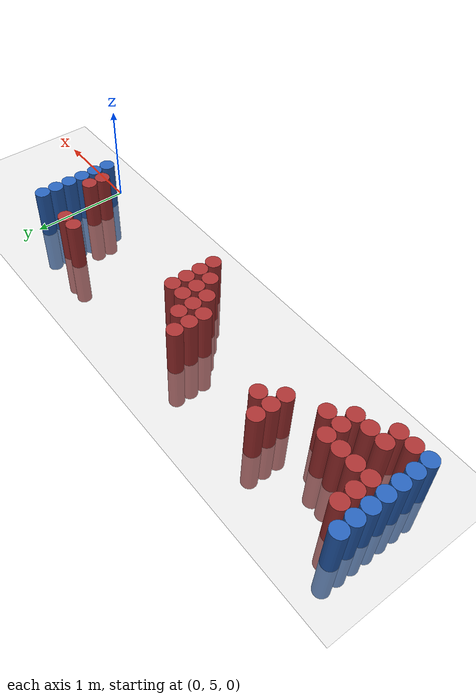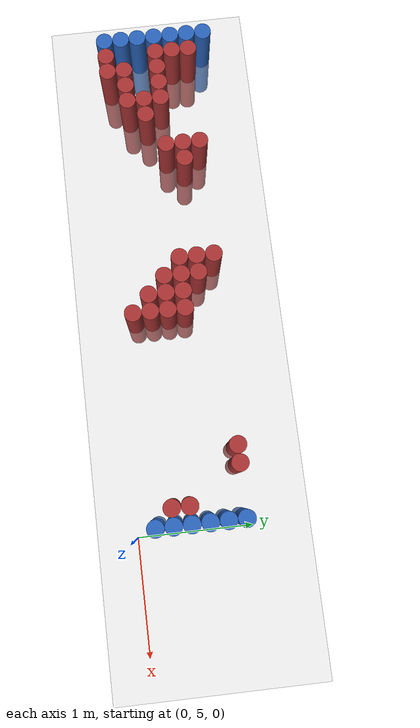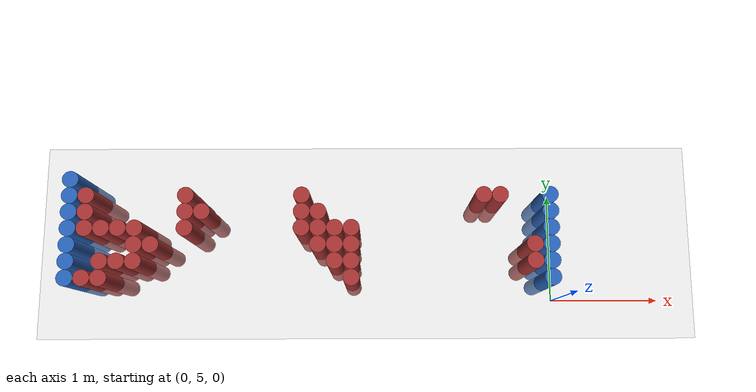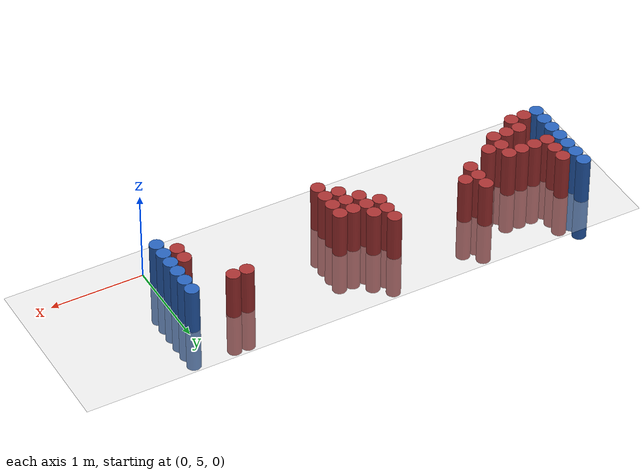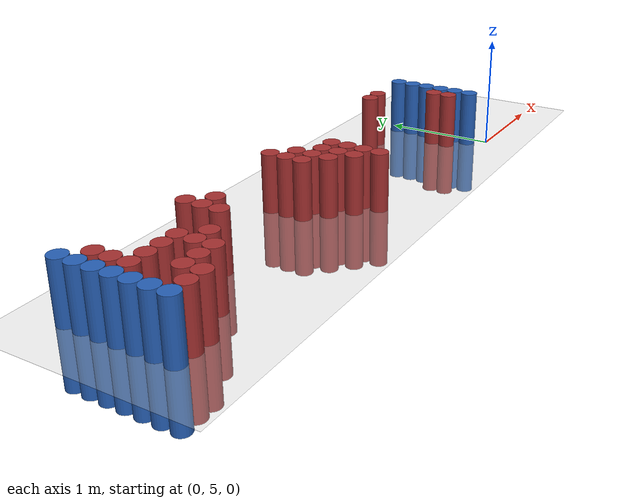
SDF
<sdf version="1.6">
 <world name="default">
  <model name="ground_plane">
   <static>1</static>
   <link name="link">
    <collision name="collision">
     <geometry><plane><normal>0 0 1</normal><size>100 100</size></plane></geometry>
     <surface><friction><ode><mu>100</mu><mu2>50</mu2></ode></friction></surface>
    </collision>
    <visual name="visual">
     <cast_shadows>0</cast_shadows>
     <geometry><plane><normal>0 0 1</normal><size>100 100</size></plane></geometry>
     <material>
      <script><uri>file://media/materials/scripts/gazebo.material</uri><name>Gazebo/Grey</name></script>
     </material>
    </visual>
   </link>
  </model>
  <model name="unit_cylinder_96">
   <static>1</static>
   <pose>-4.425000 5.175000 0.000000 0.000000 0.000000 0.000000</pose>
   <link name="link">
    <inertial>
     <mass>1</mass>
     <inertia><ixx>0.145833</ixx><ixy>0</ixy><ixz>0</ixz><iyy>0.145833</iyy><iyz>0</iyz><izz>0.125</izz></inertia>
    </inertial>
    <collision name="collision">
     <geometry><cylinder><radius>0.075000</radius><length>1</length></cylinder></geometry>
    </collision>
    <visual name="visual">
     <geometry><cylinder><radius>0.075000</radius><length>1</length></cylinder></geometry>
     <material>
      <ambient>0.152000 0.379000 0.720000 1</ambient>
      <diffuse>0.152000 0.379000 0.720000 1</diffuse>
     </material>
     <material>
      <script><name>Gazebo/Grey</name><uri>file://media/materials/scripts/gazebo.material</uri></script>
     </material>
    </visual>
   </link>
  </model>
  <model name="unit_cylinder_97">
   <static>1</static>
   <pose>-4.425000 5.325000 0.000000 0.000000 0.000000 0.000000</pose>
   <link name="link">
    <inertial>
     <mass>1</mass>
     <inertia><ixx>0.145833</ixx><ixy>0</ixy><ixz>0</ixz><iyy>0.145833</iyy><iyz>0</iyz><izz>0.125</izz></inertia>
    </inertial>
    <collision name="collision">
     <geometry><cylinder><radius>0.075000</radius><length>1</length></cylinder></geometry>
    </collision>
    <visual name="visual">
     <geometry><cylinder><radius>0.075000</radius><length>1</length></cylinder></geometry>
     <material>
      <ambient>0.152000 0.379000 0.720000 1</ambient>
      <diffuse>0.152000 0.379000 0.720000 1</diffuse>
     </material>
     <material>
      <script><name>Gazebo/Grey</name><uri>file://media/materials/scripts/gazebo.material</uri></script>
     </material>
    </visual>
   </link>
  </model>
  <model name="unit_cylinder_98">
   <static>1</static>
   <pose>-4.425000 5.475000 0.000000 0.000000 0.000000 0.000000</pose>
   <link name="link">
    <inertial>
     <mass>1</mass>
     <inertia><ixx>0.145833</ixx><ixy>0</ixy><ixz>0</ixz><iyy>0.145833</iyy><iyz>0</iyz><izz>0.125</izz></inertia>
    </inertial>
    <collision name="collision">
     <geometry><cylinder><radius>0.075000</radius><length>1</length></cylinder></geometry>
    </collision>
    <visual name="visual">
     <geometry><cylinder><radius>0.075000</radius><length>1</length></cylinder></geometry>
     <material>
      <ambient>0.152000 0.379000 0.720000 1</ambient>
      <diffuse>0.152000 0.379000 0.720000 1</diffuse>
     </material>
     <material>
      <script><name>Gazebo/Grey</name><uri>file://media/materials/scripts/gazebo.material</uri></script>
     </material>
    </visual>
   </link>
  </model>
  <model name="unit_cylinder_99">
   <static>1</static>
   <pose>-4.425000 5.625000 0.000000 0.000000 0.000000 0.000000</pose>
   <link name="link">
    <inertial>
     <mass>1</mass>
     <inertia><ixx>0.145833</ixx><ixy>0</ixy><ixz>0</ixz><iyy>0.145833</iyy><iyz>0</iyz><izz>0.125</izz></inertia>
    </inertial>
    <collision name="collision">
     <geometry><cylinder><radius>0.075000</radius><length>1</length></cylinder></geometry>
    </collision>
    <visual name="visual">
     <geometry><cylinder><radius>0.075000</radius><length>1</length></cylinder></geometry>
     <material>
      <ambient>0.152000 0.379000 0.720000 1</ambient>
      <diffuse>0.152000 0.379000 0.720000 1</diffuse>
     </material>
     <material>
      <script><name>Gazebo/Grey</name><uri>file://media/materials/scripts/gazebo.material</uri></script>
     </material>
    </visual>
   </link>
  </model>
  <model name="unit_cylinder_100">
   <static>1</static>
   <pose>-4.425000 5.775000 0.000000 0.000000 0.000000 0.000000</pose>
   <link name="link">
    <inertial>
     <mass>1</mass>
     <inertia><ixx>0.145833</ixx><ixy>0</ixy><ixz>0</ixz><iyy>0.145833</iyy><iyz>0</iyz><izz>0.125</izz></inertia>
    </inertial>
    <collision name="collision">
     <geometry><cylinder><radius>0.075000</radius><length>1</length></cylinder></geometry>
    </collision>
    <visual name="visual">
     <geometry><cylinder><radius>0.075000</radius><length>1</length></cylinder></geometry>
     <material>
      <ambient>0.152000 0.379000 0.720000 1</ambient>
      <diffuse>0.152000 0.379000 0.720000 1</diffuse>
     </material>
     <material>
      <script><name>Gazebo/Grey</name><uri>file://media/materials/scripts/gazebo.material</uri></script>
     </material>
    </visual>
   </link>
  </model>
  <model name="unit_cylinder_101">
   <static>1</static>
   <pose>-4.425000 5.925000 0.000000 0.000000 0.000000 0.000000</pose>
   <link name="link">
    <inertial>
     <mass>1</mass>
     <inertia><ixx>0.145833</ixx><ixy>0</ixy><ixz>0</ixz><iyy>0.145833</iyy><iyz>0</iyz><izz>0.125</izz></inertia>
    </inertial>
    <collision name="collision">
     <geometry><cylinder><radius>0.075000</radius><length>1</length></cylinder></geometry>
    </collision>
    <visual name="visual">
     <geometry><cylinder><radius>0.075000</radius><length>1</length></cylinder></geometry>
     <material>
      <ambient>0.152000 0.379000 0.720000 1</ambient>
      <diffuse>0.152000 0.379000 0.720000 1</diffuse>
     </material>
     <material>
      <script><name>Gazebo/Grey</name><uri>file://media/materials/scripts/gazebo.material</uri></script>
     </material>
    </visual>
   </link>
  </model>
  <model name="unit_cylinder_102">
   <static>1</static>
   <pose>-4.425000 6.075000 0.000000 0.000000 0.000000 0.000000</pose>
   <link name="link">
    <inertial>
     <mass>1</mass>
     <inertia><ixx>0.145833</ixx><ixy>0</ixy><ixz>0</ixz><iyy>0.145833</iyy><iyz>0</iyz><izz>0.125</izz></inertia>
    </inertial>
    <collision name="collision">
     <geometry><cylinder><radius>0.075000</radius><length>1</length></cylinder></geometry>
    </collision>
    <visual name="visual">
     <geometry><cylinder><radius>0.075000</radius><length>1</length></cylinder></geometry>
     <material>
      <ambient>0.152000 0.379000 0.720000 1</ambient>
      <diffuse>0.152000 0.379000 0.720000 1</diffuse>
     </material>
     <material>
      <script><name>Gazebo/Grey</name><uri>file://media/materials/scripts/gazebo.material</uri></script>
     </material>
    </visual>
   </link>
  </model>
  <model name="unit_cylinder_126">
   <static>1</static>
   <pose>-4.275000 5.175000 0.000000 0.000000 0.000000 0.000000</pose>
   <link name="link">
    <inertial>
     <mass>1</mass>
     <inertia><ixx>0.145833</ixx><ixy>0</ixy><ixz>0</ixz><iyy>0.145833</iyy><iyz>0</iyz><izz>0.125</izz></inertia>
    </inertial>
    <collision name="collision">
     <geometry><cylinder><radius>0.075000</radius><length>1</length></cylinder></geometry>
    </collision>
    <visual name="visual">
     <geometry><cylinder><radius>0.075000</radius><length>1</length></cylinder></geometry>
     <material>
      <ambient>0.648000 0.192000 0.192000 1</ambient>
      <diffuse>0.648000 0.192000 0.192000 1</diffuse>
     </material>
     <material>
      <script><name>Gazebo/Grey</name><uri>file://media/materials/scripts/gazebo.material</uri></script>
     </material>
    </visual>
   </link>
  </model>
  <model name="unit_cylinder_127">
   <static>1</static>
   <pose>-4.275000 5.625000 0.000000 0.000000 0.000000 0.000000</pose>
   <link name="link">
    <inertial>
     <mass>1</mass>
     <inertia><ixx>0.145833</ixx><ixy>0</ixy><ixz>0</ixz><iyy>0.145833</iyy><iyz>0</iyz><izz>0.125</izz></inertia>
    </inertial>
    <collision name="collision">
     <geometry><cylinder><radius>0.075000</radius><length>1</length></cylinder></geometry>
    </collision>
    <visual name="visual">
     <geometry><cylinder><radius>0.075000</radius><length>1</length></cylinder></geometry>
     <material>
      <ambient>0.648000 0.192000 0.192000 1</ambient>
      <diffuse>0.648000 0.192000 0.192000 1</diffuse>
     </material>
     <material>
      <script><name>Gazebo/Grey</name><uri>file://media/materials/scripts/gazebo.material</uri></script>
     </material>
    </visual>
   </link>
  </model>
  <model name="unit_cylinder_128">
   <static>1</static>
   <pose>-4.275000 5.775000 0.000000 0.000000 0.000000 0.000000</pose>
   <link name="link">
    <inertial>
     <mass>1</mass>
     <inertia><ixx>0.145833</ixx><ixy>0</ixy><ixz>0</ixz><iyy>0.145833</iyy><iyz>0</iyz><izz>0.125</izz></inertia>
    </inertial>
    <collision name="collision">
     <geometry><cylinder><radius>0.075000</radius><length>1</length></cylinder></geometry>
    </collision>
    <visual name="visual">
     <geometry><cylinder><radius>0.075000</radius><length>1</length></cylinder></geometry>
     <material>
      <ambient>0.648000 0.192000 0.192000 1</ambient>
      <diffuse>0.648000 0.192000 0.192000 1</diffuse>
     </material>
     <material>
      <script><name>Gazebo/Grey</name><uri>file://media/materials/scripts/gazebo.material</uri></script>
     </material>
    </visual>
   </link>
  </model>
  <model name="unit_cylinder_129">
   <static>1</static>
   <pose>-4.275000 5.925000 0.000000 0.000000 0.000000 0.000000</pose>
   <link name="link">
    <inertial>
     <mass>1</mass>
     <inertia><ixx>0.145833</ixx><ixy>0</ixy><ixz>0</ixz><iyy>0.145833</iyy><iyz>0</iyz><izz>0.125</izz></inertia>
    </inertial>
    <collision name="collision">
     <geometry><cylinder><radius>0.075000</radius><length>1</length></cylinder></geometry>
    </collision>
    <visual name="visual">
     <geometry><cylinder><radius>0.075000</radius><length>1</length></cylinder></geometry>
     <material>
      <ambient>0.648000 0.192000 0.192000 1</ambient>
      <diffuse>0.648000 0.192000 0.192000 1</diffuse>
     </material>
     <material>
      <script><name>Gazebo/Grey</name><uri>file://media/materials/scripts/gazebo.material</uri></script>
     </material>
    </visual>
   </link>
  </model>
  <model name="unit_cylinder_137">
   <static>1</static>
   <pose>-4.125000 5.175000 0.000000 0.000000 0.000000 0.000000</pose>
   <link name="link">
    <inertial>
     <mass>1</mass>
     <inertia><ixx>0.145833</ixx><ixy>0</ixy><ixz>0</ixz><iyy>0.145833</iyy><iyz>0</iyz><izz>0.125</izz></inertia>
    </inertial>
    <collision name="collision">
     <geometry><cylinder><radius>0.075000</radius><length>1</length></cylinder></geometry>
    </collision>
    <visual name="visual">
     <geometry><cylinder><radius>0.075000</radius><length>1</length></cylinder></geometry>
     <material>
      <ambient>0.648000 0.192000 0.192000 1</ambient>
      <diffuse>0.648000 0.192000 0.192000 1</diffuse>
     </material>
     <material>
      <script><name>Gazebo/Grey</name><uri>file://media/materials/scripts/gazebo.material</uri></script>
     </material>
    </visual>
   </link>
  </model>
  <model name="unit_cylinder_138">
   <static>1</static>
   <pose>-4.125000 5.325000 0.000000 0.000000 0.000000 0.000000</pose>
   <link name="link">
    <inertial>
     <mass>1</mass>
     <inertia><ixx>0.145833</ixx><ixy>0</ixy><ixz>0</ixz><iyy>0.145833</iyy><iyz>0</iyz><izz>0.125</izz></inertia>
    </inertial>
    <collision name="collision">
     <geometry><cylinder><radius>0.075000</radius><length>1</length></cylinder></geometry>
    </collision>
    <visual name="visual">
     <geometry><cylinder><radius>0.075000</radius><length>1</length></cylinder></geometry>
     <material>
      <ambient>0.648000 0.192000 0.192000 1</ambient>
      <diffuse>0.648000 0.192000 0.192000 1</diffuse>
     </material>
     <material>
      <script><name>Gazebo/Grey</name><uri>file://media/materials/scripts/gazebo.material</uri></script>
     </material>
    </visual>
   </link>
  </model>
  <model name="unit_cylinder_139">
   <static>1</static>
   <pose>-4.125000 5.625000 0.000000 0.000000 0.000000 0.000000</pose>
   <link name="link">
    <inertial>
     <mass>1</mass>
     <inertia><ixx>0.145833</ixx><ixy>0</ixy><ixz>0</ixz><iyy>0.145833</iyy><iyz>0</iyz><izz>0.125</izz></inertia>
    </inertial>
    <collision name="collision">
     <geometry><cylinder><radius>0.075000</radius><length>1</length></cylinder></geometry>
    </collision>
    <visual name="visual">
     <geometry><cylinder><radius>0.075000</radius><length>1</length></cylinder></geometry>
     <material>
      <ambient>0.648000 0.192000 0.192000 1</ambient>
      <diffuse>0.648000 0.192000 0.192000 1</diffuse>
     </material>
     <material>
      <script><name>Gazebo/Grey</name><uri>file://media/materials/scripts/gazebo.material</uri></script>
     </material>
    </visual>
   </link>
  </model>
  <model name="unit_cylinder_149">
   <static>1</static>
   <pose>-3.975000 5.325000 0.000000 0.000000 0.000000 0.000000</pose>
   <link name="link">
    <inertial>
     <mass>1</mass>
     <inertia><ixx>0.145833</ixx><ixy>0</ixy><ixz>0</ixz><iyy>0.145833</iyy><iyz>0</iyz><izz>0.125</izz></inertia>
    </inertial>
    <collision name="collision">
     <geometry><cylinder><radius>0.075000</radius><length>1</length></cylinder></geometry>
    </collision>
    <visual name="visual">
     <geometry><cylinder><radius>0.075000</radius><length>1</length></cylinder></geometry>
     <material>
      <ambient>0.648000 0.192000 0.192000 1</ambient>
      <diffuse>0.648000 0.192000 0.192000 1</diffuse>
     </material>
     <material>
      <script><name>Gazebo/Grey</name><uri>file://media/materials/scripts/gazebo.material</uri></script>
     </material>
    </visual>
   </link>
  </model>
  <model name="unit_cylinder_150">
   <static>1</static>
   <pose>-3.975000 5.625000 0.000000 0.000000 0.000000 0.000000</pose>
   <link name="link">
    <inertial>
     <mass>1</mass>
     <inertia><ixx>0.145833</ixx><ixy>0</ixy><ixz>0</ixz><iyy>0.145833</iyy><iyz>0</iyz><izz>0.125</izz></inertia>
    </inertial>
    <collision name="collision">
     <geometry><cylinder><radius>0.075000</radius><length>1</length></cylinder></geometry>
    </collision>
    <visual name="visual">
     <geometry><cylinder><radius>0.075000</radius><length>1</length></cylinder></geometry>
     <material>
      <ambient>0.648000 0.192000 0.192000 1</ambient>
      <diffuse>0.648000 0.192000 0.192000 1</diffuse>
     </material>
     <material>
      <script><name>Gazebo/Grey</name><uri>file://media/materials/scripts/gazebo.material</uri></script>
     </material>
    </visual>
   </link>
  </model>
  <model name="unit_cylinder_154">
   <static>1</static>
   <pose>-3.825000 5.325000 0.000000 0.000000 0.000000 0.000000</pose>
   <link name="link">
    <inertial>
     <mass>1</mass>
     <inertia><ixx>0.145833</ixx><ixy>0</ixy><ixz>0</ixz><iyy>0.145833</iyy><iyz>0</iyz><izz>0.125</izz></inertia>
    </inertial>
    <collision name="collision">
     <geometry><cylinder><radius>0.075000</radius><length>1</length></cylinder></geometry>
    </collision>
    <visual name="visual">
     <geometry><cylinder><radius>0.075000</radius><length>1</length></cylinder></geometry>
     <material>
      <ambient>0.648000 0.192000 0.192000 1</ambient>
      <diffuse>0.648000 0.192000 0.192000 1</diffuse>
     </material>
     <material>
      <script><name>Gazebo/Grey</name><uri>file://media/materials/scripts/gazebo.material</uri></script>
     </material>
    </visual>
   </link>
  </model>
  <model name="unit_cylinder_155">
   <static>1</static>
   <pose>-3.825000 5.475000 0.000000 0.000000 0.000000 0.000000</pose>
   <link name="link">
    <inertial>
     <mass>1</mass>
     <inertia><ixx>0.145833</ixx><ixy>0</ixy><ixz>0</ixz><iyy>0.145833</iyy><iyz>0</iyz><izz>0.125</izz></inertia>
    </inertial>
    <collision name="collision">
     <geometry><cylinder><radius>0.075000</radius><length>1</length></cylinder></geometry>
    </collision>
    <visual name="visual">
     <geometry><cylinder><radius>0.075000</radius><length>1</length></cylinder></geometry>
     <material>
      <ambient>0.648000 0.192000 0.192000 1</ambient>
      <diffuse>0.648000 0.192000 0.192000 1</diffuse>
     </material>
     <material>
      <script><name>Gazebo/Grey</name><uri>file://media/materials/scripts/gazebo.material</uri></script>
     </material>
    </visual>
   </link>
  </model>
  <model name="unit_cylinder_156">
   <static>1</static>
   <pose>-3.825000 5.625000 0.000000 0.000000 0.000000 0.000000</pose>
   <link name="link">
    <inertial>
     <mass>1</mass>
     <inertia><ixx>0.145833</ixx><ixy>0</ixy><ixz>0</ixz><iyy>0.145833</iyy><iyz>0</iyz><izz>0.125</izz></inertia>
    </inertial>
    <collision name="collision">
     <geometry><cylinder><radius>0.075000</radius><length>1</length></cylinder></geometry>
    </collision>
    <visual name="visual">
     <geometry><cylinder><radius>0.075000</radius><length>1</length></cylinder></geometry>
     <material>
      <ambient>0.648000 0.192000 0.192000 1</ambient>
      <diffuse>0.648000 0.192000 0.192000 1</diffuse>
     </material>
     <material>
      <script><name>Gazebo/Grey</name><uri>file://media/materials/scripts/gazebo.material</uri></script>
     </material>
    </visual>
   </link>
  </model>
  <model name="unit_cylinder_159">
   <static>1</static>
   <pose>-3.675000 5.475000 0.000000 0.000000 0.000000 0.000000</pose>
   <link name="link">
    <inertial>
     <mass>1</mass>
     <inertia><ixx>0.145833</ixx><ixy>0</ixy><ixz>0</ixz><iyy>0.145833</iyy><iyz>0</iyz><izz>0.125</izz></inertia>
    </inertial>
    <collision name="collision">
     <geometry><cylinder><radius>0.075000</radius><length>1</length></cylinder></geometry>
    </collision>
    <visual name="visual">
     <geometry><cylinder><radius>0.075000</radius><length>1</length></cylinder></geometry>
     <material>
      <ambient>0.648000 0.192000 0.192000 1</ambient>
      <diffuse>0.648000 0.192000 0.192000 1</diffuse>
     </material>
     <material>
      <script><name>Gazebo/Grey</name><uri>file://media/materials/scripts/gazebo.material</uri></script>
     </material>
    </visual>
   </link>
  </model>
  <model name="unit_cylinder_164">
   <static>1</static>
   <pose>-3.375000 5.625000 0.000000 0.000000 0.000000 0.000000</pose>
   <link name="link">
    <inertial>
     <mass>1</mass>
     <inertia><ixx>0.145833</ixx><ixy>0</ixy><ixz>0</ixz><iyy>0.145833</iyy><iyz>0</iyz><izz>0.125</izz></inertia>
    </inertial>
    <collision name="collision">
     <geometry><cylinder><radius>0.075000</radius><length>1</length></cylinder></geometry>
    </collision>
    <visual name="visual">
     <geometry><cylinder><radius>0.075000</radius><length>1</length></cylinder></geometry>
     <material>
      <ambient>0.648000 0.192000 0.192000 1</ambient>
      <diffuse>0.648000 0.192000 0.192000 1</diffuse>
     </material>
     <material>
      <script><name>Gazebo/Grey</name><uri>file://media/materials/scripts/gazebo.material</uri></script>
     </material>
    </visual>
   </link>
  </model>
  <model name="unit_cylinder_165">
   <static>1</static>
   <pose>-3.375000 5.775000 0.000000 0.000000 0.000000 0.000000</pose>
   <link name="link">
    <inertial>
     <mass>1</mass>
     <inertia><ixx>0.145833</ixx><ixy>0</ixy><ixz>0</ixz><iyy>0.145833</iyy><iyz>0</iyz><izz>0.125</izz></inertia>
    </inertial>
    <collision name="collision">
     <geometry><cylinder><radius>0.075000</radius><length>1</length></cylinder></geometry>
    </collision>
    <visual name="visual">
     <geometry><cylinder><radius>0.075000</radius><length>1</length></cylinder></geometry>
     <material>
      <ambient>0.648000 0.192000 0.192000 1</ambient>
      <diffuse>0.648000 0.192000 0.192000 1</diffuse>
     </material>
     <material>
      <script><name>Gazebo/Grey</name><uri>file://media/materials/scripts/gazebo.material</uri></script>
     </material>
    </visual>
   </link>
  </model>
  <model name="unit_cylinder_166">
   <static>1</static>
   <pose>-3.375000 5.925000 0.000000 0.000000 0.000000 0.000000</pose>
   <link name="link">
    <inertial>
     <mass>1</mass>
     <inertia><ixx>0.145833</ixx><ixy>0</ixy><ixz>0</ixz><iyy>0.145833</iyy><iyz>0</iyz><izz>0.125</izz></inertia>
    </inertial>
    <collision name="collision">
     <geometry><cylinder><radius>0.075000</radius><length>1</length></cylinder></geometry>
    </collision>
    <visual name="visual">
     <geometry><cylinder><radius>0.075000</radius><length>1</length></cylinder></geometry>
     <material>
      <ambient>0.648000 0.192000 0.192000 1</ambient>
      <diffuse>0.648000 0.192000 0.192000 1</diffuse>
     </material>
     <material>
      <script><name>Gazebo/Grey</name><uri>file://media/materials/scripts/gazebo.material</uri></script>
     </material>
    </visual>
   </link>
  </model>
  <model name="unit_cylinder_167">
   <static>1</static>
   <pose>-3.225000 5.775000 0.000000 0.000000 0.000000 0.000000</pose>
   <link name="link">
    <inertial>
     <mass>1</mass>
     <inertia><ixx>0.145833</ixx><ixy>0</ixy><ixz>0</ixz><iyy>0.145833</iyy><iyz>0</iyz><izz>0.125</izz></inertia>
    </inertial>
    <collision name="collision">
     <geometry><cylinder><radius>0.075000</radius><length>1</length></cylinder></geometry>
    </collision>
    <visual name="visual">
     <geometry><cylinder><radius>0.075000</radius><length>1</length></cylinder></geometry>
     <material>
      <ambient>0.648000 0.192000 0.192000 1</ambient>
      <diffuse>0.648000 0.192000 0.192000 1</diffuse>
     </material>
     <material>
      <script><name>Gazebo/Grey</name><uri>file://media/materials/scripts/gazebo.material</uri></script>
     </material>
    </visual>
   </link>
  </model>
  <model name="unit_cylinder_168">
   <static>1</static>
   <pose>-2.325000 5.625000 0.000000 0.000000 0.000000 0.000000</pose>
   <link name="link">
    <inertial>
     <mass>1</mass>
     <inertia><ixx>0.145833</ixx><ixy>0</ixy><ixz>0</ixz><iyy>0.145833</iyy><iyz>0</iyz><izz>0.125</izz></inertia>
    </inertial>
    <collision name="collision">
     <geometry><cylinder><radius>0.075000</radius><length>1</length></cylinder></geometry>
    </collision>
    <visual name="visual">
     <geometry><cylinder><radius>0.075000</radius><length>1</length></cylinder></geometry>
     <material>
      <ambient>0.648000 0.192000 0.192000 1</ambient>
      <diffuse>0.648000 0.192000 0.192000 1</diffuse>
     </material>
     <material>
      <script><name>Gazebo/Grey</name><uri>file://media/materials/scripts/gazebo.material</uri></script>
     </material>
    </visual>
   </link>
  </model>
  <model name="unit_cylinder_169">
   <static>1</static>
   <pose>-2.325000 5.775000 0.000000 0.000000 0.000000 0.000000</pose>
   <link name="link">
    <inertial>
     <mass>1</mass>
     <inertia><ixx>0.145833</ixx><ixy>0</ixy><ixz>0</ixz><iyy>0.145833</iyy><iyz>0</iyz><izz>0.125</izz></inertia>
    </inertial>
    <collision name="collision">
     <geometry><cylinder><radius>0.075000</radius><length>1</length></cylinder></geometry>
    </collision>
    <visual name="visual">
     <geometry><cylinder><radius>0.075000</radius><length>1</length></cylinder></geometry>
     <material>
      <ambient>0.648000 0.192000 0.192000 1</ambient>
      <diffuse>0.648000 0.192000 0.192000 1</diffuse>
     </material>
     <material>
      <script><name>Gazebo/Grey</name><uri>file://media/materials/scripts/gazebo.material</uri></script>
     </material>
    </visual>
   </link>
  </model>
  <model name="unit_cylinder_170">
   <static>1</static>
   <pose>-2.325000 5.925000 0.000000 0.000000 0.000000 0.000000</pose>
   <link name="link">
    <inertial>
     <mass>1</mass>
     <inertia><ixx>0.145833</ixx><ixy>0</ixy><ixz>0</ixz><iyy>0.145833</iyy><iyz>0</iyz><izz>0.125</izz></inertia>
    </inertial>
    <collision name="collision">
     <geometry><cylinder><radius>0.075000</radius><length>1</length></cylinder></geometry>
    </collision>
    <visual name="visual">
     <geometry><cylinder><radius>0.075000</radius><length>1</length></cylinder></geometry>
     <material>
      <ambient>0.648000 0.192000 0.192000 1</ambient>
      <diffuse>0.648000 0.192000 0.192000 1</diffuse>
     </material>
     <material>
      <script><name>Gazebo/Grey</name><uri>file://media/materials/scripts/gazebo.material</uri></script>
     </material>
    </visual>
   </link>
  </model>
  <model name="unit_cylinder_171">
   <static>1</static>
   <pose>-2.175000 5.475000 0.000000 0.000000 0.000000 0.000000</pose>
   <link name="link">
    <inertial>
     <mass>1</mass>
     <inertia><ixx>0.145833</ixx><ixy>0</ixy><ixz>0</ixz><iyy>0.145833</iyy><iyz>0</iyz><izz>0.125</izz></inertia>
    </inertial>
    <collision name="collision">
     <geometry><cylinder><radius>0.075000</radius><length>1</length></cylinder></geometry>
    </collision>
    <visual name="visual">
     <geometry><cylinder><radius>0.075000</radius><length>1</length></cylinder></geometry>
     <material>
      <ambient>0.648000 0.192000 0.192000 1</ambient>
      <diffuse>0.648000 0.192000 0.192000 1</diffuse>
     </material>
     <material>
      <script><name>Gazebo/Grey</name><uri>file://media/materials/scripts/gazebo.material</uri></script>
     </material>
    </visual>
   </link>
  </model>
  <model name="unit_cylinder_172">
   <static>1</static>
   <pose>-2.175000 5.625000 0.000000 0.000000 0.000000 0.000000</pose>
   <link name="link">
    <inertial>
     <mass>1</mass>
     <inertia><ixx>0.145833</ixx><ixy>0</ixy><ixz>0</ixz><iyy>0.145833</iyy><iyz>0</iyz><izz>0.125</izz></inertia>
    </inertial>
    <collision name="collision">
     <geometry><cylinder><radius>0.075000</radius><length>1</length></cylinder></geometry>
    </collision>
    <visual name="visual">
     <geometry><cylinder><radius>0.075000</radius><length>1</length></cylinder></geometry>
     <material>
      <ambient>0.648000 0.192000 0.192000 1</ambient>
      <diffuse>0.648000 0.192000 0.192000 1</diffuse>
     </material>
     <material>
      <script><name>Gazebo/Grey</name><uri>file://media/materials/scripts/gazebo.material</uri></script>
     </material>
    </visual>
   </link>
  </model>
  <model name="unit_cylinder_173">
   <static>1</static>
   <pose>-2.175000 5.775000 0.000000 0.000000 0.000000 0.000000</pose>
   <link name="link">
    <inertial>
     <mass>1</mass>
     <inertia><ixx>0.145833</ixx><ixy>0</ixy><ixz>0</ixz><iyy>0.145833</iyy><iyz>0</iyz><izz>0.125</izz></inertia>
    </inertial>
    <collision name="collision">
     <geometry><cylinder><radius>0.075000</radius><length>1</length></cylinder></geometry>
    </collision>
    <visual name="visual">
     <geometry><cylinder><radius>0.075000</radius><length>1</length></cylinder></geometry>
     <material>
      <ambient>0.648000 0.192000 0.192000 1</ambient>
      <diffuse>0.648000 0.192000 0.192000 1</diffuse>
     </material>
     <material>
      <script><name>Gazebo/Grey</name><uri>file://media/materials/scripts/gazebo.material</uri></script>
     </material>
    </visual>
   </link>
  </model>
  <model name="unit_cylinder_176">
   <static>1</static>
   <pose>-2.025000 5.325000 0.000000 0.000000 0.000000 0.000000</pose>
   <link name="link">
    <inertial>
     <mass>1</mass>
     <inertia><ixx>0.145833</ixx><ixy>0</ixy><ixz>0</ixz><iyy>0.145833</iyy><iyz>0</iyz><izz>0.125</izz></inertia>
    </inertial>
    <collision name="collision">
     <geometry><cylinder><radius>0.075000</radius><length>1</length></cylinder></geometry>
    </collision>
    <visual name="visual">
     <geometry><cylinder><radius>0.075000</radius><length>1</length></cylinder></geometry>
     <material>
      <ambient>0.648000 0.192000 0.192000 1</ambient>
      <diffuse>0.648000 0.192000 0.192000 1</diffuse>
     </material>
     <material>
      <script><name>Gazebo/Grey</name><uri>file://media/materials/scripts/gazebo.material</uri></script>
     </material>
    </visual>
   </link>
  </model>
  <model name="unit_cylinder_177">
   <static>1</static>
   <pose>-2.025000 5.475000 0.000000 0.000000 0.000000 0.000000</pose>
   <link name="link">
    <inertial>
     <mass>1</mass>
     <inertia><ixx>0.145833</ixx><ixy>0</ixy><ixz>0</ixz><iyy>0.145833</iyy><iyz>0</iyz><izz>0.125</izz></inertia>
    </inertial>
    <collision name="collision">
     <geometry><cylinder><radius>0.075000</radius><length>1</length></cylinder></geometry>
    </collision>
    <visual name="visual">
     <geometry><cylinder><radius>0.075000</radius><length>1</length></cylinder></geometry>
     <material>
      <ambient>0.648000 0.192000 0.192000 1</ambient>
      <diffuse>0.648000 0.192000 0.192000 1</diffuse>
     </material>
     <material>
      <script><name>Gazebo/Grey</name><uri>file://media/materials/scripts/gazebo.material</uri></script>
     </material>
    </visual>
   </link>
  </model>
  <model name="unit_cylinder_178">
   <static>1</static>
   <pose>-2.025000 5.625000 0.000000 0.000000 0.000000 0.000000</pose>
   <link name="link">
    <inertial>
     <mass>1</mass>
     <inertia><ixx>0.145833</ixx><ixy>0</ixy><ixz>0</ixz><iyy>0.145833</iyy><iyz>0</iyz><izz>0.125</izz></inertia>
    </inertial>
    <collision name="collision">
     <geometry><cylinder><radius>0.075000</radius><length>1</length></cylinder></geometry>
    </collision>
    <visual name="visual">
     <geometry><cylinder><radius>0.075000</radius><length>1</length></cylinder></geometry>
     <material>
      <ambient>0.648000 0.192000 0.192000 1</ambient>
      <diffuse>0.648000 0.192000 0.192000 1</diffuse>
     </material>
     <material>
      <script><name>Gazebo/Grey</name><uri>file://media/materials/scripts/gazebo.material</uri></script>
     </material>
    </visual>
   </link>
  </model>
  <model name="unit_cylinder_180">
   <static>1</static>
   <pose>-1.875000 5.175000 0.000000 0.000000 0.000000 0.000000</pose>
   <link name="link">
    <inertial>
     <mass>1</mass>
     <inertia><ixx>0.145833</ixx><ixy>0</ixy><ixz>0</ixz><iyy>0.145833</iyy><iyz>0</iyz><izz>0.125</izz></inertia>
    </inertial>
    <collision name="collision">
     <geometry><cylinder><radius>0.075000</radius><length>1</length></cylinder></geometry>
    </collision>
    <visual name="visual">
     <geometry><cylinder><radius>0.075000</radius><length>1</length></cylinder></geometry>
     <material>
      <ambient>0.648000 0.192000 0.192000 1</ambient>
      <diffuse>0.648000 0.192000 0.192000 1</diffuse>
     </material>
     <material>
      <script><name>Gazebo/Grey</name><uri>file://media/materials/scripts/gazebo.material</uri></script>
     </material>
    </visual>
   </link>
  </model>
  <model name="unit_cylinder_181">
   <static>1</static>
   <pose>-1.875000 5.325000 0.000000 0.000000 0.000000 0.000000</pose>
   <link name="link">
    <inertial>
     <mass>1</mass>
     <inertia><ixx>0.145833</ixx><ixy>0</ixy><ixz>0</ixz><iyy>0.145833</iyy><iyz>0</iyz><izz>0.125</izz></inertia>
    </inertial>
    <collision name="collision">
     <geometry><cylinder><radius>0.075000</radius><length>1</length></cylinder></geometry>
    </collision>
    <visual name="visual">
     <geometry><cylinder><radius>0.075000</radius><length>1</length></cylinder></geometry>
     <material>
      <ambient>0.648000 0.192000 0.192000 1</ambient>
      <diffuse>0.648000 0.192000 0.192000 1</diffuse>
     </material>
     <material>
      <script><name>Gazebo/Grey</name><uri>file://media/materials/scripts/gazebo.material</uri></script>
     </material>
    </visual>
   </link>
  </model>
  <model name="unit_cylinder_182">
   <static>1</static>
   <pose>-1.875000 5.475000 0.000000 0.000000 0.000000 0.000000</pose>
   <link name="link">
    <inertial>
     <mass>1</mass>
     <inertia><ixx>0.145833</ixx><ixy>0</ixy><ixz>0</ixz><iyy>0.145833</iyy><iyz>0</iyz><izz>0.125</izz></inertia>
    </inertial>
    <collision name="collision">
     <geometry><cylinder><radius>0.075000</radius><length>1</length></cylinder></geometry>
    </collision>
    <visual name="visual">
     <geometry><cylinder><radius>0.075000</radius><length>1</length></cylinder></geometry>
     <material>
      <ambient>0.648000 0.192000 0.192000 1</ambient>
      <diffuse>0.648000 0.192000 0.192000 1</diffuse>
     </material>
     <material>
      <script><name>Gazebo/Grey</name><uri>file://media/materials/scripts/gazebo.material</uri></script>
     </material>
    </visual>
   </link>
  </model>
  <model name="unit_cylinder_183">
   <static>1</static>
   <pose>-1.875000 5.625000 0.000000 0.000000 0.000000 0.000000</pose>
   <link name="link">
    <inertial>
     <mass>1</mass>
     <inertia><ixx>0.145833</ixx><ixy>0</ixy><ixz>0</ixz><iyy>0.145833</iyy><iyz>0</iyz><izz>0.125</izz></inertia>
    </inertial>
    <collision name="collision">
     <geometry><cylinder><radius>0.075000</radius><length>1</length></cylinder></geometry>
    </collision>
    <visual name="visual">
     <geometry><cylinder><radius>0.075000</radius><length>1</length></cylinder></geometry>
     <material>
      <ambient>0.648000 0.192000 0.192000 1</ambient>
      <diffuse>0.648000 0.192000 0.192000 1</diffuse>
     </material>
     <material>
      <script><name>Gazebo/Grey</name><uri>file://media/materials/scripts/gazebo.material</uri></script>
     </material>
    </visual>
   </link>
  </model>
  <model name="unit_cylinder_224">
   <static>1</static>
   <pose>-0.675000 5.925000 0.000000 0.000000 0.000000 0.000000</pose>
   <link name="link">
    <inertial>
     <mass>1</mass>
     <inertia><ixx>0.145833</ixx><ixy>0</ixy><ixz>0</ixz><iyy>0.145833</iyy><iyz>0</iyz><izz>0.125</izz></inertia>
    </inertial>
    <collision name="collision">
     <geometry><cylinder><radius>0.075000</radius><length>1</length></cylinder></geometry>
    </collision>
    <visual name="visual">
     <geometry><cylinder><radius>0.075000</radius><length>1</length></cylinder></geometry>
     <material>
      <ambient>0.648000 0.192000 0.192000 1</ambient>
      <diffuse>0.648000 0.192000 0.192000 1</diffuse>
     </material>
     <material>
      <script><name>Gazebo/Grey</name><uri>file://media/materials/scripts/gazebo.material</uri></script>
     </material>
    </visual>
   </link>
  </model>
  <model name="unit_cylinder_236">
   <static>1</static>
   <pose>-0.525000 5.925000 0.000000 0.000000 0.000000 0.000000</pose>
   <link name="link">
    <inertial>
     <mass>1</mass>
     <inertia><ixx>0.145833</ixx><ixy>0</ixy><ixz>0</ixz><iyy>0.145833</iyy><iyz>0</iyz><izz>0.125</izz></inertia>
    </inertial>
    <collision name="collision">
     <geometry><cylinder><radius>0.075000</radius><length>1</length></cylinder></geometry>
    </collision>
    <visual name="visual">
     <geometry><cylinder><radius>0.075000</radius><length>1</length></cylinder></geometry>
     <material>
      <ambient>0.648000 0.192000 0.192000 1</ambient>
      <diffuse>0.648000 0.192000 0.192000 1</diffuse>
     </material>
     <material>
      <script><name>Gazebo/Grey</name><uri>file://media/materials/scripts/gazebo.material</uri></script>
     </material>
    </visual>
   </link>
  </model>
  <model name="unit_cylinder_250">
   <static>1</static>
   <pose>-0.225000 5.325000 0.000000 0.000000 0.000000 0.000000</pose>
   <link name="link">
    <inertial>
     <mass>1</mass>
     <inertia><ixx>0.145833</ixx><ixy>0</ixy><ixz>0</ixz><iyy>0.145833</iyy><iyz>0</iyz><izz>0.125</izz></inertia>
    </inertial>
    <collision name="collision">
     <geometry><cylinder><radius>0.075000</radius><length>1</length></cylinder></geometry>
    </collision>
    <visual name="visual">
     <geometry><cylinder><radius>0.075000</radius><length>1</length></cylinder></geometry>
     <material>
      <ambient>0.648000 0.192000 0.192000 1</ambient>
      <diffuse>0.648000 0.192000 0.192000 1</diffuse>
     </material>
     <material>
      <script><name>Gazebo/Grey</name><uri>file://media/materials/scripts/gazebo.material</uri></script>
     </material>
    </visual>
   </link>
  </model>
  <model name="unit_cylinder_251">
   <static>1</static>
   <pose>-0.225000 5.475000 0.000000 0.000000 0.000000 0.000000</pose>
   <link name="link">
    <inertial>
     <mass>1</mass>
     <inertia><ixx>0.145833</ixx><ixy>0</ixy><ixz>0</ixz><iyy>0.145833</iyy><iyz>0</iyz><izz>0.125</izz></inertia>
    </inertial>
    <collision name="collision">
     <geometry><cylinder><radius>0.075000</radius><length>1</length></cylinder></geometry>
    </collision>
    <visual name="visual">
     <geometry><cylinder><radius>0.075000</radius><length>1</length></cylinder></geometry>
     <material>
      <ambient>0.648000 0.192000 0.192000 1</ambient>
      <diffuse>0.648000 0.192000 0.192000 1</diffuse>
     </material>
     <material>
      <script><name>Gazebo/Grey</name><uri>file://media/materials/scripts/gazebo.material</uri></script>
     </material>
    </visual>
   </link>
  </model>
  <model name="unit_cylinder_256">
   <static>1</static>
   <pose>-0.075000 5.175000 0.000000 0.000000 0.000000 0.000000</pose>
   <link name="link">
    <inertial>
     <mass>1</mass>
     <inertia><ixx>0.145833</ixx><ixy>0</ixy><ixz>0</ixz><iyy>0.145833</iyy><iyz>0</iyz><izz>0.125</izz></inertia>
    </inertial>
    <collision name="collision">
     <geometry><cylinder><radius>0.075000</radius><length>1</length></cylinder></geometry>
    </collision>
    <visual name="visual">
     <geometry><cylinder><radius>0.075000</radius><length>1</length></cylinder></geometry>
     <material>
      <ambient>0.152000 0.379000 0.720000 1</ambient>
      <diffuse>0.152000 0.379000 0.720000 1</diffuse>
     </material>
     <material>
      <script><name>Gazebo/Grey</name><uri>file://media/materials/scripts/gazebo.material</uri></script>
     </material>
    </visual>
   </link>
  </model>
  <model name="unit_cylinder_257">
   <static>1</static>
   <pose>-0.075000 5.325000 0.000000 0.000000 0.000000 0.000000</pose>
   <link name="link">
    <inertial>
     <mass>1</mass>
     <inertia><ixx>0.145833</ixx><ixy>0</ixy><ixz>0</ixz><iyy>0.145833</iyy><iyz>0</iyz><izz>0.125</izz></inertia>
    </inertial>
    <collision name="collision">
     <geometry><cylinder><radius>0.075000</radius><length>1</length></cylinder></geometry>
    </collision>
    <visual name="visual">
     <geometry><cylinder><radius>0.075000</radius><length>1</length></cylinder></geometry>
     <material>
      <ambient>0.152000 0.379000 0.720000 1</ambient>
      <diffuse>0.152000 0.379000 0.720000 1</diffuse>
     </material>
     <material>
      <script><name>Gazebo/Grey</name><uri>file://media/materials/scripts/gazebo.material</uri></script>
     </material>
    </visual>
   </link>
  </model>
  <model name="unit_cylinder_258">
   <static>1</static>
   <pose>-0.075000 5.475000 0.000000 0.000000 0.000000 0.000000</pose>
   <link name="link">
    <inertial>
     <mass>1</mass>
     <inertia><ixx>0.145833</ixx><ixy>0</ixy><ixz>0</ixz><iyy>0.145833</iyy><iyz>0</iyz><izz>0.125</izz></inertia>
    </inertial>
    <collision name="collision">
     <geometry><cylinder><radius>0.075000</radius><length>1</length></cylinder></geometry>
    </collision>
    <visual name="visual">
     <geometry><cylinder><radius>0.075000</radius><length>1</length></cylinder></geometry>
     <material>
      <ambient>0.152000 0.379000 0.720000 1</ambient>
      <diffuse>0.152000 0.379000 0.720000 1</diffuse>
     </material>
     <material>
      <script><name>Gazebo/Grey</name><uri>file://media/materials/scripts/gazebo.material</uri></script>
     </material>
    </visual>
   </link>
  </model>
  <model name="unit_cylinder_259">
   <static>1</static>
   <pose>-0.075000 5.625000 0.000000 0.000000 0.000000 0.000000</pose>
   <link name="link">
    <inertial>
     <mass>1</mass>
     <inertia><ixx>0.145833</ixx><ixy>0</ixy><ixz>0</ixz><iyy>0.145833</iyy><iyz>0</iyz><izz>0.125</izz></inertia>
    </inertial>
    <collision name="collision">
     <geometry><cylinder><radius>0.075000</radius><length>1</length></cylinder></geometry>
    </collision>
    <visual name="visual">
     <geometry><cylinder><radius>0.075000</radius><length>1</length></cylinder></geometry>
     <material>
      <ambient>0.152000 0.379000 0.720000 1</ambient>
      <diffuse>0.152000 0.379000 0.720000 1</diffuse>
     </material>
     <material>
      <script><name>Gazebo/Grey</name><uri>file://media/materials/scripts/gazebo.material</uri></script>
     </material>
    </visual>
   </link>
  </model>
  <model name="unit_cylinder_260">
   <static>1</static>
   <pose>-0.075000 5.775000 0.000000 0.000000 0.000000 0.000000</pose>
   <link name="link">
    <inertial>
     <mass>1</mass>
     <inertia><ixx>0.145833</ixx><ixy>0</ixy><ixz>0</ixz><iyy>0.145833</iyy><iyz>0</iyz><izz>0.125</izz></inertia>
    </inertial>
    <collision name="collision">
     <geometry><cylinder><radius>0.075000</radius><length>1</length></cylinder></geometry>
    </collision>
    <visual name="visual">
     <geometry><cylinder><radius>0.075000</radius><length>1</length></cylinder></geometry>
     <material>
      <ambient>0.152000 0.379000 0.720000 1</ambient>
      <diffuse>0.152000 0.379000 0.720000 1</diffuse>
     </material>
     <material>
      <script><name>Gazebo/Grey</name><uri>file://media/materials/scripts/gazebo.material</uri></script>
     </material>
    </visual>
   </link>
  </model>
  <model name="unit_cylinder_261">
   <static>1</static>
   <pose>-0.075000 5.925000 0.000000 0.000000 0.000000 0.000000</pose>
   <link name="link">
    <inertial>
     <mass>1</mass>
     <inertia><ixx>0.145833</ixx><ixy>0</ixy><ixz>0</ixz><iyy>0.145833</iyy><iyz>0</iyz><izz>0.125</izz></inertia>
    </inertial>
    <collision name="collision">
     <geometry><cylinder><radius>0.075000</radius><length>1</length></cylinder></geometry>
    </collision>
    <visual name="visual">
     <geometry><cylinder><radius>0.075000</radius><length>1</length></cylinder></geometry>
     <material>
      <ambient>0.152000 0.379000 0.720000 1</ambient>
      <diffuse>0.152000 0.379000 0.720000 1</diffuse>
     </material>
     <material>
      <script><name>Gazebo/Grey</name><uri>file://media/materials/scripts/gazebo.material</uri></script>
     </material>
    </visual>
   </link>
  </model>
 </world>
</sdf>
